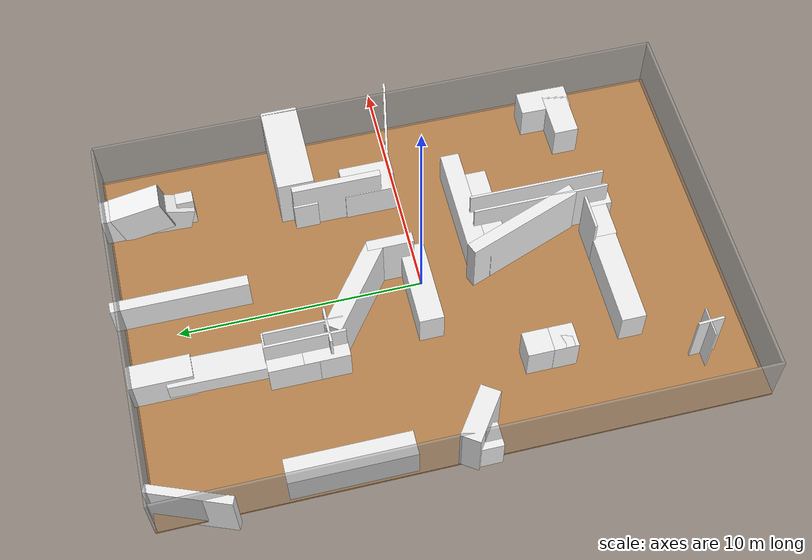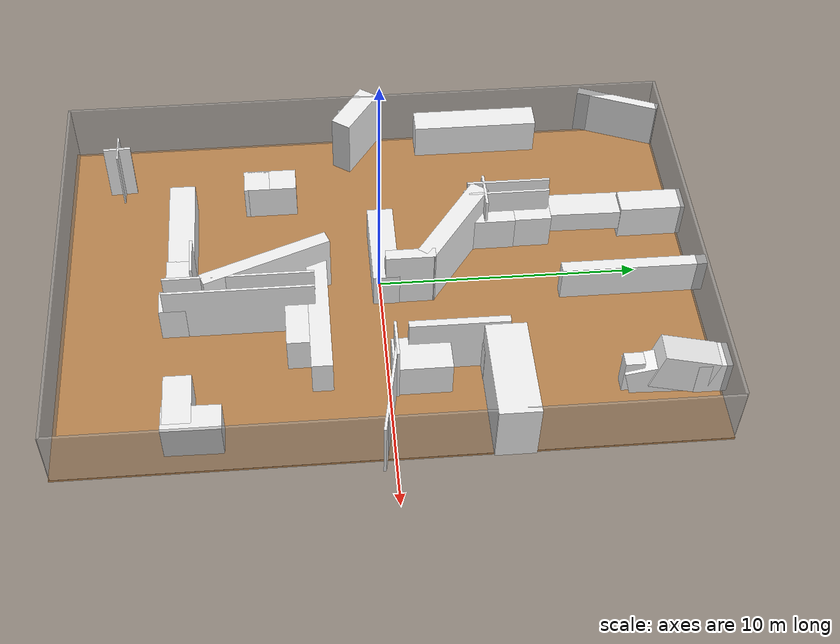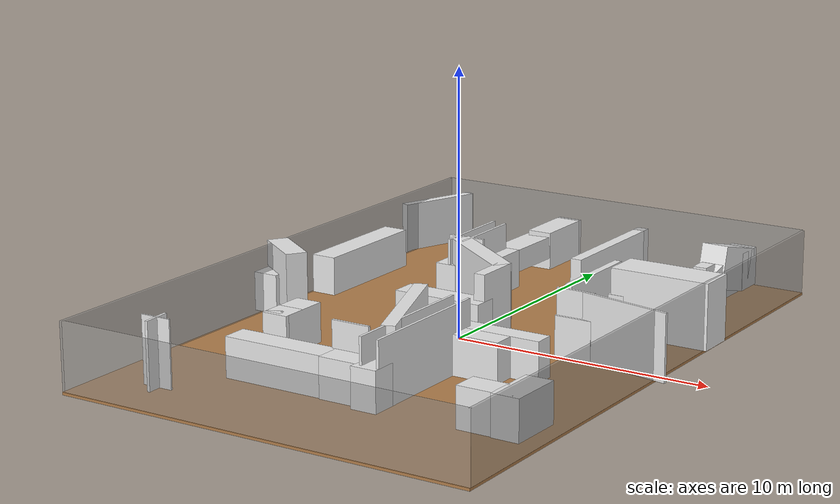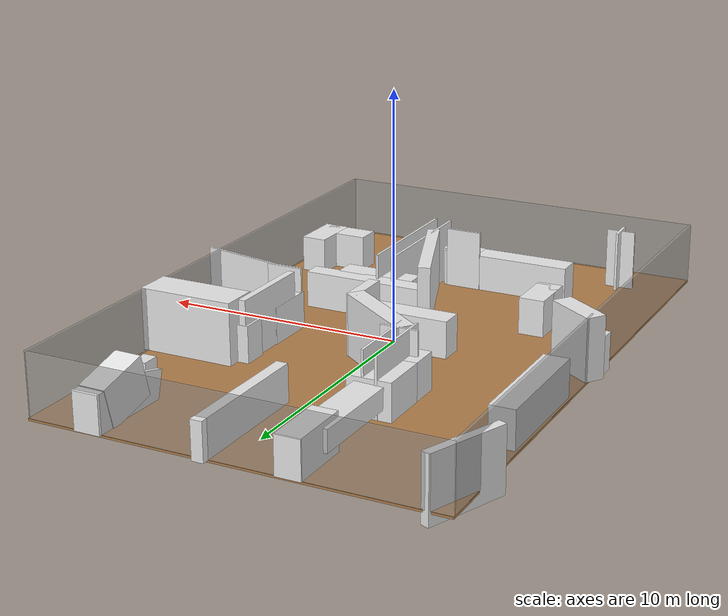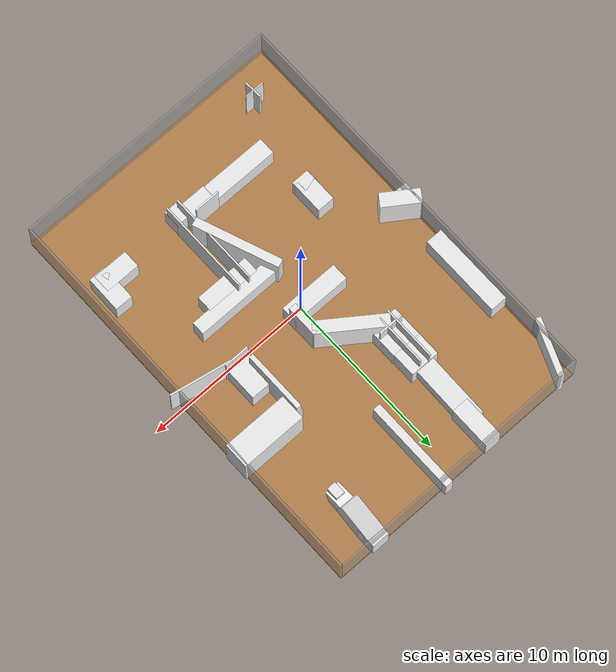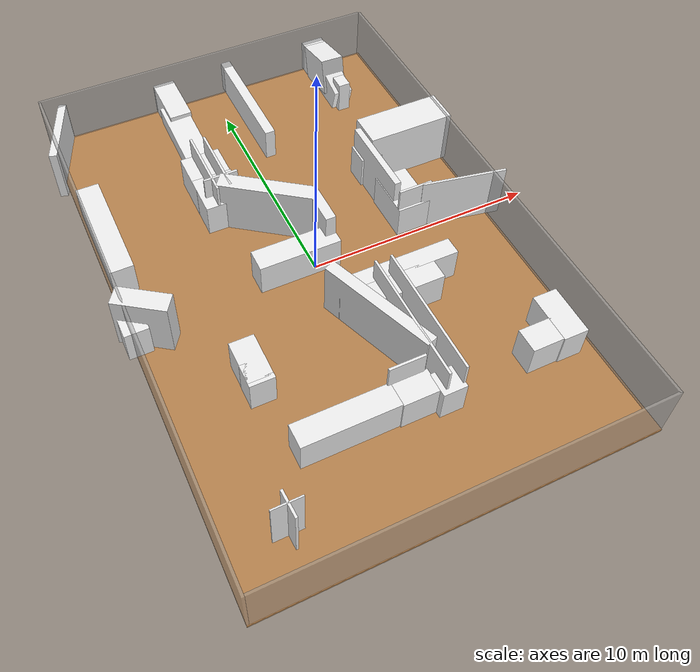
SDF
<sdf version="1.7">
 <world name="default">
  <light name="sun" type="directional">
   <pose>0 0 10 0 -0 0</pose>
   <diffuse>0.8 0.8 0.8 1</diffuse>
   <specular>0.2 0.2 0.2 1</specular>
   <attenuation>
    <range>1000</range>
    <constant>0.9</constant>
    <linear>0.01</linear>
    <quadratic>0.001</quadratic>
   </attenuation>
   <direction>-0.5 0.1 -0.9</direction>
   <spot><inner_angle>0</inner_angle><outer_angle>0</outer_angle><falloff>0</falloff></spot>
  </light>
  <physics name="default_physics" default="0" type="ode">
   <real_time_update_rate>1000</real_time_update_rate>
   <max_step_size>0.001</max_step_size>
   <real_time_factor>1</real_time_factor>
   <ode>
    <solver>
     <type>quick</type>
     <iters>150</iters>
     <precon_iters>0</precon_iters>
     <sor>1.4</sor>
     <use_dynamic_moi_rescaling>1</use_dynamic_moi_rescaling>
    </solver>
    <constraints>
     <cfm>1e-05</cfm>
     <erp>0.2</erp>
     <contact_max_correcting_vel>2000</contact_max_correcting_vel>
     <contact_surface_layer>0.01</contact_surface_layer>
    </constraints>
   </ode>
  </physics>
  <model name="box_1">
   <pose>0.05 -12.05 1.25 0 -0 0</pose>
   <static>1</static>
   <link name="link">
    <collision name="collision"><geometry><box><size>16.1 0.1 2.5</size></box></geometry></collision>
    <visual name="visual">
     <geometry><box><size>16.1 0.1 2.5</size></box></geometry>
     <material>
      <script><name>Gazebo/GreyTransparent</name><uri>file://media/materials/scripts/gazebo.material</uri></script>
     </material>
    </visual>
   </link>
  </model>
  <model name="box_2">
   <pose>8.06174 -0.026302 1.25 0 -0 0</pose>
   <static>1</static>
   <link name="link">
    <collision name="collision"><geometry><box><size>0.1 24.1 2.5</size></box></geometry></collision>
    <visual name="visual">
     <geometry><box><size>0.1 24.1 2.5</size></box></geometry>
     <material>
      <script><name>Gazebo/GreyTransparent</name><uri>file://media/materials/scripts/gazebo.material</uri></script>
     </material>
    </visual>
   </link>
  </model>
  <model name="box_3">
   <pose>-0.05 12.05 1.25 0 -0 0</pose>
   <static>1</static>
   <link name="link">
    <collision name="collision"><geometry><box><size>16.1 0.1 2.5</size></box></geometry></collision>
    <visual name="visual">
     <geometry><box><size>16.1 0.1 2.5</size></box></geometry>
     <material>
      <script><name>Gazebo/GreyTransparent</name><uri>file://media/materials/scripts/gazebo.material</uri></script>
     </material>
    </visual>
   </link>
  </model>
  <model name="box_4">
   <pose>-8.05 -0.05 1.25 0 -0 0</pose>
   <static>1</static>
   <link name="link">
    <collision name="collision"><geometry><box><size>0.1 24.1 2.5</size></box></geometry></collision>
    <visual name="visual">
     <geometry><box><size>0.1 24.1 2.5</size></box></geometry>
     <material>
      <script><name>Gazebo/GreyTransparent</name><uri>file://media/materials/scripts/gazebo.material</uri></script>
     </material>
    </visual>
   </link>
  </model>
  <model name="box_5">
   <pose>0.008855 -0.029843 -0.05 0 -0 0</pose>
   <static>1</static>
   <link name="link">
    <collision name="collision"><geometry><box><size>16.2 24.2 0.1</size></box></geometry></collision>
    <visual name="visual">
     <geometry><box><size>16.2 24.2 0.1</size></box></geometry>
     <material>
      <script><name>Gazebo/WoodFloor</name><uri>file://media/materials/scripts/gazebo.material</uri></script>
     </material>
    </visual>
   </link>
  </model>
  <gravity>0 0 -9.8066</gravity>
  <magnetic_field>6e-06 2.3e-05 -4.2e-05</magnetic_field>
  <atmosphere type="adiabatic"/>
  <scene><ambient>0.4 0.4 0.4 1</ambient><background>0.7 0.7 0.7 1</background><shadows>1</shadows></scene>
  <spherical_coordinates>
   <surface_model>EARTH_WGS84</surface_model>
   <latitude_deg>0</latitude_deg>
   <longitude_deg>0</longitude_deg>
   <elevation>0</elevation>
   <heading_deg>0</heading_deg>
  </spherical_coordinates>
  <model name="box_8_clone">
   <pose>6.785 -0.087834 1.25 0 0 -0.191358</pose>
   <static>1</static>
   <link name="link">
    <collision name="collision"><geometry><box><size>3.67087 0.1 2.5</size></box></geometry></collision>
    <visual name="visual">
     <geometry><box><size>3.67087 0.1 2.5</size></box></geometry>
     <material>
      <script><name>Gazebo/White</name><uri>file://media/materials/scripts/gazebo.material</uri></script>
     </material>
    </visual>
   </link>
  </model>
  <model name="box_9_clone_clone_0">
   <pose>-2.3742 -7.50278 0.75 0 -0 0</pose>
   <static>1</static>
   <link name="link">
    <collision name="collision"><geometry><box><size>3.97916 1 1.5</size></box></geometry></collision>
    <visual name="visual">
     <geometry><box><size>3.97916 1 1.5</size></box></geometry>
     <material>
      <script><name>Gazebo/White</name><uri>file://media/materials/scripts/gazebo.material</uri></script>
     </material>
    </visual>
   </link>
  </model>
  <model name="box_9_clone_clone_1">
   <pose>0.352261 -7.55684 0.75 0 -0 0</pose>
   <static>1</static>
   <link name="link">
    <collision name="collision"><geometry><box><size>1.50562 1 1.5</size></box></geometry></collision>
    <visual name="visual">
     <geometry><box><size>1.50562 1 1.5</size></box></geometry>
     <material>
      <script><name>Gazebo/White</name><uri>file://media/materials/scripts/gazebo.material</uri></script>
     </material>
    </visual>
   </link>
  </model>
  <model name="box_9_clone_clone_2">
   <pose>-4.48641 -3.9624 0.75 0 -0 0</pose>
   <static>1</static>
   <link name="link">
    <collision name="collision"><geometry><box><size>1.032 1.89253 1.5</size></box></geometry></collision>
    <visual name="visual">
     <geometry><box><size>1.032 1.89253 1.5</size></box></geometry>
     <material>
      <script><name>Gazebo/White</name><uri>file://media/materials/scripts/gazebo.material</uri></script>
     </material>
    </visual>
   </link>
  </model>
  <model name="box_9_clone_clone_3">
   <pose>6.06344 -7.56131 0.75 0 0 -1.57247</pose>
   <static>1</static>
   <link name="link">
    <collision name="collision"><geometry><box><size>1.02796 2.07959 1.5</size></box></geometry></collision>
    <visual name="visual">
     <geometry><box><size>1.02796 2.07959 1.5</size></box></geometry>
     <material>
      <script><name>Gazebo/White</name><uri>file://media/materials/scripts/gazebo.material</uri></script>
     </material>
    </visual>
   </link>
  </model>
  <model name="box_8_clone_clone_13_clone_clone_clone_clone_0">
   <pose>-7.73666 10.5414 0.706232 0 0 -1.95097</pose>
   <static>1</static>
   <link name="link">
    <collision name="collision"><geometry><box><size>3.35644 0.347427 2.5</size></box></geometry></collision>
    <visual name="visual">
     <geometry><box><size>3.35644 0.347427 2.5</size></box></geometry>
     <material>
      <script><name>Gazebo/White</name><uri>file://media/materials/scripts/gazebo.material</uri></script>
     </material>
    </visual>
   </link>
  </model>
  <model name="box_8_clone_clone_11_clone">
   <pose>0.547651 -4.29786 1.25 0 0 -2.77666</pose>
   <static>1</static>
   <link name="link">
    <collision name="collision"><geometry><box><size>0.506942 5.04986 2.5</size></box></geometry></collision>
    <visual name="visual">
     <geometry><box><size>0.506942 5.04986 2.5</size></box></geometry>
     <material>
      <script><name>Gazebo/White</name><uri>file://media/materials/scripts/gazebo.material</uri></script>
     </material>
    </visual>
   </link>
  </model>
  <model name="box_8_clone_clone_4_clone_2">
   <pose>-0.883702 2.91222 1.25 0 -0 2.51391</pose>
   <static>1</static>
   <link name="link">
    <collision name="collision"><geometry><box><size>4.08638 0.729983 2.5</size></box></geometry></collision>
    <visual name="visual">
     <geometry><box><size>4.08638 0.729983 2.5</size></box></geometry>
     <material>
      <script><name>Gazebo/White</name><uri>file://media/materials/scripts/gazebo.material</uri></script>
     </material>
    </visual>
   </link>
  </model>
  <model name="box_9_clone_clone_7_clone">
   <pose>-7.49323 4.51692 0.75 0 -0 0</pose>
   <static>1</static>
   <link name="link">
    <collision name="collision"><geometry><box><size>1 4.97616 1.5</size></box></geometry></collision>
    <visual name="visual">
     <geometry><box><size>1 4.97616 1.5</size></box></geometry>
     <material>
      <script><name>Gazebo/White</name><uri>file://media/materials/scripts/gazebo.material</uri></script>
     </material>
    </visual>
   </link>
  </model>
  <model name="box_9_clone_clone_7_clone_clone">
   <pose>-7.89766 -0.627489 0.75 0 -0 0</pose>
   <static>1</static>
   <link name="link">
    <collision name="collision"><geometry><box><size>1 1 1.5</size></box></geometry></collision>
    <visual name="visual">
     <geometry><box><size>1 1 1.5</size></box></geometry>
     <material>
      <script><name>Gazebo/White</name><uri>file://media/materials/scripts/gazebo.material</uri></script>
     </material>
    </visual>
   </link>
  </model>
  <model name="box_9_clone_clone_7_clone_clone_4">
   <pose>-4.4901 -4.56966 0.75 0 -0 0</pose>
   <static>1</static>
   <link name="link">
    <collision name="collision"><geometry><box><size>1.03791 1 1.5</size></box></geometry></collision>
    <visual name="visual">
     <geometry><box><size>1.03791 1 1.5</size></box></geometry>
     <material>
      <script><name>Gazebo/White</name><uri>file://media/materials/scripts/gazebo.material</uri></script>
     </material>
    </visual>
   </link>
  </model>
  <model name="box_9_clone_clone_5_clone_2_clone_0">
   <pose>5.47546 8.7607 0.75 0 -0 0</pose>
   <static>1</static>
   <link name="link">
    <collision name="collision"><geometry><box><size>0.542187 0.717315 1.5</size></box></geometry></collision>
    <visual name="visual">
     <geometry><box><size>0.542187 0.717315 1.5</size></box></geometry>
     <material>
      <script><name>Gazebo/White</name><uri>file://media/materials/scripts/gazebo.material</uri></script>
     </material>
    </visual>
   </link>
  </model>
  <model name="box_9_clone_clone_5_clone_2_clone_0_clone_0">
   <pose>6.88976 -7.06318 0.75 0 -0 3.12889</pose>
   <static>1</static>
   <link name="link">
    <collision name="collision"><geometry><box><size>1.05676 2.1313 1.5</size></box></geometry></collision>
    <visual name="visual">
     <geometry><box><size>1.05676 2.1313 1.5</size></box></geometry>
     <material>
      <script><name>Gazebo/White</name><uri>file://media/materials/scripts/gazebo.material</uri></script>
     </material>
    </visual>
   </link>
  </model>
  <model name="box_6_clone_clone_4_clone">
   <pose>5.4707 10.5746 0.993481 0 -1.3182 1.53996</pose>
   <static>1</static>
   <link name="link">
    <collision name="collision"><geometry><box><size>1.68173 1.08009 2.15382</size></box></geometry></collision>
    <visual name="visual">
     <geometry><box><size>1.68173 1.08009 2.15382</size></box></geometry>
     <material>
      <script><name>Gazebo/White</name><uri>file://media/materials/scripts/gazebo.material</uri></script>
     </material>
    </visual>
   </link>
  </model>
  <model name="box_9_clone_clone_7_clone_clone_clone">
   <pose>-0.779636 0.204245 0.75 0 -0 0</pose>
   <static>1</static>
   <link name="link">
    <collision name="collision"><geometry><box><size>3.55314 1 1.5</size></box></geometry></collision>
    <visual name="visual">
     <geometry><box><size>3.55314 1 1.5</size></box></geometry>
     <material>
      <script><name>Gazebo/White</name><uri>file://media/materials/scripts/gazebo.material</uri></script>
     </material>
    </visual>
   </link>
  </model>
  <model name="box_8_clone_clone_3_clone">
   <pose>6.27933 4.20674 1.25 0 -0 0</pose>
   <static>1</static>
   <link name="link">
    <collision name="collision"><geometry><box><size>3.89805 1.51194 2.5</size></box></geometry></collision>
    <visual name="visual">
     <geometry><box><size>3.89805 1.51194 2.5</size></box></geometry>
     <material>
      <script><name>Gazebo/White</name><uri>file://media/materials/scripts/gazebo.material</uri></script>
     </material>
    </visual>
   </link>
  </model>
  <model name="box_9_clone_clone_7_clone_0">
   <pose>0.952701 9.62823 0.75 0 -0 0</pose>
   <static>1</static>
   <link name="link">
    <collision name="collision"><geometry><box><size>0.463616 5.52543 1.5</size></box></geometry></collision>
    <visual name="visual">
     <geometry><box><size>0.463616 5.52543 1.5</size></box></geometry>
     <material>
      <script><name>Gazebo/White</name><uri>file://media/materials/scripts/gazebo.material</uri></script>
     </material>
    </visual>
   </link>
  </model>
  <model name="box_9_clone_clone_9_clone">
   <pose>-2.30467 10.9007 0.75 0 -0 0</pose>
   <static>1</static>
   <link name="link">
    <collision name="collision"><geometry><box><size>1 2.5124 1.5</size></box></geometry></collision>
    <visual name="visual">
     <geometry><box><size>1 2.5124 1.5</size></box></geometry>
     <material>
      <script><name>Gazebo/White</name><uri>file://media/materials/scripts/gazebo.material</uri></script>
     </material>
    </visual>
   </link>
  </model>
  <model name="box_6_clone_clone_3_clone_clone_clone">
   <pose>-2.74377 5.24994 1.25 0 -0 0</pose>
   <static>1</static>
   <link name="link">
    <collision name="collision"><geometry><box><size>0.1 3.23033 2.5</size></box></geometry></collision>
    <visual name="visual">
     <geometry><box><size>0.1 3.23033 2.5</size></box></geometry>
     <material>
      <script><name>Gazebo/White</name><uri>file://media/materials/scripts/gazebo.material</uri></script>
     </material>
    </visual>
   </link>
  </model>
  <model name="box_6_clone_clone_3_clone_clone_clone_clone">
   <pose>4.0979 2.59008 1.25 0 -0 0</pose>
   <static>1</static>
   <link name="link">
    <collision name="collision"><geometry><box><size>0.281721 3.67789 2.5</size></box></geometry></collision>
    <visual name="visual">
     <geometry><box><size>0.281721 3.67789 2.5</size></box></geometry>
     <material>
      <script><name>Gazebo/White</name><uri>file://media/materials/scripts/gazebo.material</uri></script>
     </material>
    </visual>
   </link>
  </model>
  <model name="box_6_clone_clone_3_clone_clone_clone_clone_0">
   <pose>2.0182 -5.31678 1.25 0 -0 0</pose>
   <static>1</static>
   <link name="link">
    <collision name="collision"><geometry><box><size>0.1 5.60332 2.5</size></box></geometry></collision>
    <visual name="visual">
     <geometry><box><size>0.1 5.60332 2.5</size></box></geometry>
     <material>
      <script><name>Gazebo/White</name><uri>file://media/materials/scripts/gazebo.material</uri></script>
     </material>
    </visual>
   </link>
  </model>
  <model name="box_6_clone_clone_3_clone_clone_clone_clone_0_clone">
   <pose>1.33283 -5.29976 1.25 0 -0 0</pose>
   <static>1</static>
   <link name="link">
    <collision name="collision"><geometry><box><size>0.1 5.60332 2.5</size></box></geometry></collision>
    <visual name="visual">
     <geometry><box><size>0.1 5.60332 2.5</size></box></geometry>
     <material>
      <script><name>Gazebo/White</name><uri>file://media/materials/scripts/gazebo.material</uri></script>
     </material>
    </visual>
   </link>
  </model>
  <model name="box_9_clone_clone_5_clone_2_clone_0_clone_clone">
   <pose>2.33722 -2.40901 0.75 0 -0 0</pose>
   <static>1</static>
   <link name="link">
    <collision name="collision"><geometry><box><size>5.2806 0.780779 1.5</size></box></geometry></collision>
    <visual name="visual">
     <geometry><box><size>5.2806 0.780779 1.5</size></box></geometry>
     <material>
      <script><name>Gazebo/White</name><uri>file://media/materials/scripts/gazebo.material</uri></script>
     </material>
    </visual>
   </link>
  </model>
  <model name="box_8_clone_clone">
   <pose>4.67077 0.276191 1.25 0 -0 0</pose>
   <static>1</static>
   <link name="link">
    <collision name="collision"><geometry><box><size>1.5 0.1 2.5</size></box></geometry></collision>
    <visual name="visual">
     <geometry><box><size>1.5 0.1 2.5</size></box></geometry>
     <material>
      <script><name>Gazebo/White</name><uri>file://media/materials/scripts/gazebo.material</uri></script>
     </material>
    </visual>
   </link>
  </model>
  <model name="box_9_clone_clone_7_clone_clone_0">
   <pose>-2.43804 4.51684 0.75 0 -0 0</pose>
   <static>1</static>
   <link name="link">
    <collision name="collision"><geometry><box><size>1.78234 1.82645 1.5</size></box></geometry></collision>
    <visual name="visual">
     <geometry><box><size>1.78234 1.82645 1.5</size></box></geometry>
     <material>
      <script><name>Gazebo/White</name><uri>file://media/materials/scripts/gazebo.material</uri></script>
     </material>
    </visual>
   </link>
  </model>
  <model name="box_9_clone_clone_5_clone_2_clone_0_clone_0_clone">
   <pose>1.56966 -7.808 0.75 0 -0 0</pose>
   <static>1</static>
   <link name="link">
    <collision name="collision"><geometry><box><size>1 1 1.5</size></box></geometry></collision>
    <visual name="visual">
     <geometry><box><size>1 1 1.5</size></box></geometry>
     <material>
      <script><name>Gazebo/White</name><uri>file://media/materials/scripts/gazebo.material</uri></script>
     </material>
    </visual>
   </link>
  </model>
  <model name="box_9_clone_clone_5_clone_2_clone_clone_clone_0_clone">
   <pose>4.3636 3.94247 0.75 0 -0 0</pose>
   <static>1</static>
   <link name="link">
    <collision name="collision"><geometry><box><size>0.996807 1.00784 1.5</size></box></geometry></collision>
    <visual name="visual">
     <geometry><box><size>0.996807 1.00784 1.5</size></box></geometry>
     <material>
      <script><name>Gazebo/White</name><uri>file://media/materials/scripts/gazebo.material</uri></script>
     </material>
    </visual>
   </link>
  </model>
  <model name="box_9_clone_clone_5_clone_2_clone_clone_clone_0_clone_clone">
   <pose>4.63539 1.20184 0.75 0 -0 0</pose>
   <static>1</static>
   <link name="link">
    <collision name="collision"><geometry><box><size>1.44369 2.14316 1.5</size></box></geometry></collision>
    <visual name="visual">
     <geometry><box><size>1.44369 2.14316 1.5</size></box></geometry>
     <material>
      <script><name>Gazebo/White</name><uri>file://media/materials/scripts/gazebo.material</uri></script>
     </material>
    </visual>
   </link>
  </model>
  <model name="box_6_clone_clone_3_clone_clone_clone_clone_1">
   <pose>-2.16782 5.21001 1.25 0 -0 0.001144</pose>
   <static>1</static>
   <link name="link">
    <collision name="collision"><geometry><box><size>0.1 3.12165 2.5</size></box></geometry></collision>
    <visual name="visual">
     <geometry><box><size>0.1 3.12165 2.5</size></box></geometry>
     <material>
      <script><name>Gazebo/White</name><uri>file://media/materials/scripts/gazebo.material</uri></script>
     </material>
    </visual>
   </link>
  </model>
  <model name="box_9_clone_clone_8_clone_0_clone">
   <pose>-2.45484 5.8388 0.75 0 -0 0</pose>
   <static>1</static>
   <link name="link">
    <collision name="collision"><geometry><box><size>1.7568 2.01981 1.5</size></box></geometry></collision>
    <visual name="visual">
     <geometry><box><size>1.7568 2.01981 1.5</size></box></geometry>
     <material>
      <script><name>Gazebo/White</name><uri>file://media/materials/scripts/gazebo.material</uri></script>
     </material>
    </visual>
   </link>
  </model>
  <model name="box_8_clone_clone_3_clone_clone_clone">
   <pose>-7.36618 -0.451941 1.25 0 0 -0.605945</pose>
   <static>1</static>
   <link name="link">
    <collision name="collision"><geometry><box><size>2.23578 0.820117 2.5</size></box></geometry></collision>
    <visual name="visual">
     <geometry><box><size>2.23578 0.820117 2.5</size></box></geometry>
     <material>
      <script><name>Gazebo/White</name><uri>file://media/materials/scripts/gazebo.material</uri></script>
     </material>
    </visual>
   </link>
  </model>
  <audio><device>default</device></audio>
  <model name="box_6_clone_clone_4_clone_clone">
   <pose>5.4658 9.66897 0.508139 -0 -1.31613 -1.60232</pose>
   <static>1</static>
   <link name="link">
    <collision name="collision"><geometry><box><size>1.71758 0.8896 2.14553</size></box></geometry></collision>
    <visual name="visual">
     <geometry><box><size>1.71758 0.8896 2.14553</size></box></geometry>
     <material>
      <script><name>Gazebo/White</name><uri>file://media/materials/scripts/gazebo.material</uri></script>
     </material>
    </visual>
   </link>
  </model>
  <model name="box_9_clone_clone_5_clone_2_clone_0_clone_0_clone_0">
   <pose>2.23795 -3.18404 0.75 0 -0 0</pose>
   <static>1</static>
   <link name="link">
    <collision name="collision"><geometry><box><size>3.25064 0.937604 1.5</size></box></geometry></collision>
    <visual name="visual">
     <geometry><box><size>3.25064 0.937604 1.5</size></box></geometry>
     <material>
      <script><name>Gazebo/White</name><uri>file://media/materials/scripts/gazebo.material</uri></script>
     </material>
    </visual>
   </link>
  </model>
  <model name="box_8_clone_clone_11_clone_clone_0">
   <pose>-5.67141 -10.0374 1.25 0 -0 1.62008</pose>
   <static>1</static>
   <link name="link">
    <collision name="collision"><geometry><box><size>1.06277 0.1 2.5</size></box></geometry></collision>
    <visual name="visual">
     <geometry><box><size>1.06277 0.1 2.5</size></box></geometry>
     <material>
      <script><name>Gazebo/White</name><uri>file://media/materials/scripts/gazebo.material</uri></script>
     </material>
    </visual>
   </link>
  </model>
  <model name="box_8_clone_clone_11_clone_clone_1">
   <pose>-5.71384 -9.99262 1.25 0 -0 0</pose>
   <static>1</static>
   <link name="link">
    <collision name="collision"><geometry><box><size>1.19714 0.0589998 2.5</size></box></geometry></collision>
    <visual name="visual">
     <geometry><box><size>1.19714 0.0589998 2.5</size></box></geometry>
     <material>
      <script><name>Gazebo/White</name><uri>file://media/materials/scripts/gazebo.material</uri></script>
     </material>
    </visual>
   </link>
  </model>
  <model name="box_8_clone_clone_11_clone_clone_1_clone">
   <pose>0.220749 -7.0443 1.25 0 -0 0</pose>
   <static>1</static>
   <link name="link">
    <collision name="collision"><geometry><box><size>1.5 0.1 2.5</size></box></geometry></collision>
    <visual name="visual">
     <geometry><box><size>1.5 0.1 2.5</size></box></geometry>
     <material>
      <script><name>Gazebo/White</name><uri>file://media/materials/scripts/gazebo.material</uri></script>
     </material>
    </visual>
   </link>
  </model>
  <model name="box_8_clone_clone_4_clone_2_clone">
   <pose>-2.37022 4.28765 1.25 0 -0 0</pose>
   <static>1</static>
   <link name="link">
    <collision name="collision"><geometry><box><size>1.5 0.1 2.5</size></box></geometry></collision>
    <visual name="visual">
     <geometry><box><size>1.5 0.1 2.5</size></box></geometry>
     <material>
      <script><name>Gazebo/White</name><uri>file://media/materials/scripts/gazebo.material</uri></script>
     </material>
    </visual>
   </link>
  </model>
  <model name="box_8_clone_clone_4_clone_2_clone_clone">
   <pose>0.744676 1.11744 1.25 0 0 -1.56859</pose>
   <static>1</static>
   <link name="link">
    <collision name="collision"><geometry><box><size>1.87995 0.449698 2.5</size></box></geometry></collision>
    <visual name="visual">
     <geometry><box><size>1.87995 0.449698 2.5</size></box></geometry>
     <material>
      <script><name>Gazebo/White</name><uri>file://media/materials/scripts/gazebo.material</uri></script>
     </material>
    </visual>
   </link>
  </model>
  <model name="box_9_clone_clone_5_clone_2_clone_0_clone">
   <pose>5.5121 11.606 0.75 0 -0 0</pose>
   <static>1</static>
   <link name="link">
    <collision name="collision"><geometry><box><size>1.0548 1.22023 1.5</size></box></geometry></collision>
    <visual name="visual">
     <geometry><box><size>1.0548 1.22023 1.5</size></box></geometry>
     <material>
      <script><name>Gazebo/White</name><uri>file://media/materials/scripts/gazebo.material</uri></script>
     </material>
    </visual>
   </link>
  </model>
  <model name="box_8_clone_clone_3_clone_clone_clone_0">
   <pose>-2.42426 8.65758 0.872067 -1.57067 -0.035681 -0.014782</pose>
   <static>1</static>
   <link name="link">
    <collision name="collision"><geometry><box><size>1.1445 0.870245 4.08788</size></box></geometry></collision>
    <visual name="visual">
     <geometry><box><size>1.1445 0.870245 4.08788</size></box></geometry>
     <material>
      <script><name>Gazebo/White</name><uri>file://media/materials/scripts/gazebo.material</uri></script>
     </material>
    </visual>
   </link>
  </model>
 </world>
</sdf>
